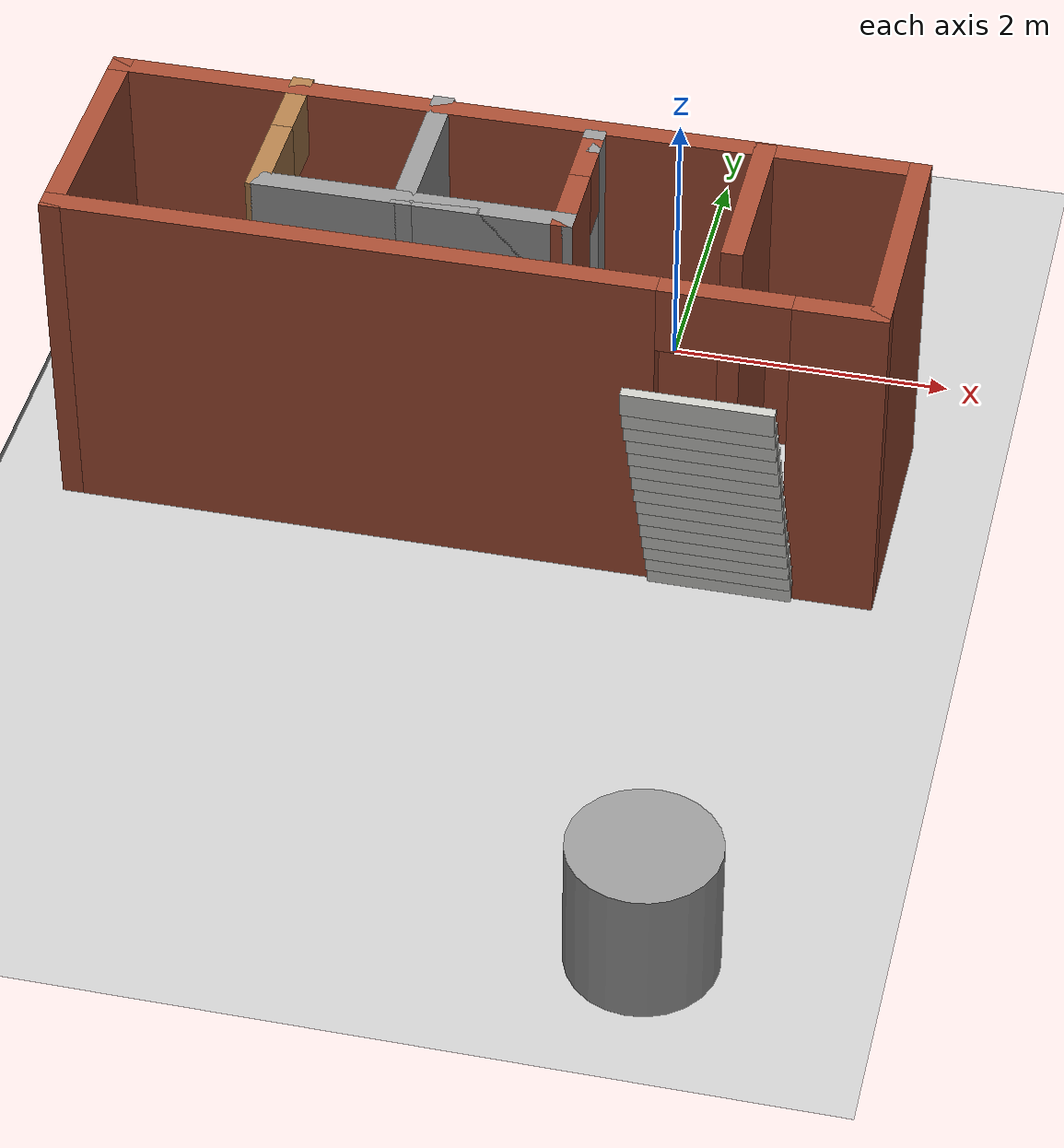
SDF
<sdf version="1.7">
 <world name="default">
  <light name="sun" type="directional">
   <pose>0 0 10 0 -0 0</pose>
   <diffuse>0.8 0.8 0.8 1</diffuse>
   <specular>0.2 0.2 0.2 1</specular>
   <attenuation>
    <range>1000</range>
    <constant>0.9</constant>
    <linear>0.01</linear>
    <quadratic>0.001</quadratic>
   </attenuation>
   <direction>-0.5 0.1 -0.9</direction>
   <spot><inner_angle>0</inner_angle><outer_angle>0</outer_angle><falloff>0</falloff></spot>
  </light>
  <model name="ground_plane">
   <static>1</static>
   <link name="link">
    <collision name="collision">
     <geometry><plane><normal>0 0 1</normal><size>100 100</size></plane></geometry>
     <surface>
      <contact><collide_bitmask>65535</collide_bitmask></contact>
      <friction><ode><mu>100</mu><mu2>50</mu2></ode></friction>
     </surface>
    </collision>
    <visual name="visual">
     <cast_shadows>0</cast_shadows>
     <geometry><plane><normal>0 0 1</normal><size>100 100</size></plane></geometry>
     <material>
      <script><uri>file://media/materials/scripts/gazebo.material</uri><name>Gazebo/Grey</name></script>
     </material>
    </visual>
   </link>
  </model>
  <gravity>0 0 -9.8</gravity>
  <magnetic_field>6e-06 2.3e-05 -4.2e-05</magnetic_field>
  <atmosphere type="adiabatic"/>
  <physics type="ode">
   <max_step_size>0.001</max_step_size>
   <real_time_factor>1</real_time_factor>
   <real_time_update_rate>1000</real_time_update_rate>
  </physics>
  <scene><ambient>0.4 0.4 0.4 1</ambient><background>0.7 0.7 0.7 1</background><shadows>1</shadows></scene>
  <spherical_coordinates>
   <surface_model>EARTH_WGS84</surface_model>
   <latitude_deg>0</latitude_deg>
   <longitude_deg>0</longitude_deg>
   <elevation>0</elevation>
   <heading_deg>0</heading_deg>
  </spherical_coordinates>
  <model name="Untitled">
   <pose>-1.01 -1.78129 0 0 -0 0</pose>
   <link name="Stairs_0">
    <visual name="Stairs_0_Visual_0">
     <pose>1.82 -0.686462 0.083333 0 -0 0</pose>
     <geometry><box><size>1 0.075505 0.166667</size></box></geometry>
     <material>
      <script><uri>file://media/materials/scripts/gazebo.material</uri><name>Gazebo/CeilingTiled</name></script>
      <ambient>1 1 1 1</ambient>
     </material>
     <meta><layer>0</layer></meta>
    </visual>
    <collision name="Stairs_0_Collision_0">
     <geometry><box><size>1 0.075505 0.166667</size></box></geometry>
     <pose>1.82 -0.686462 0.083333 0 -0 0</pose>
    </collision>
    <visual name="Stairs_0_Visual_1">
     <pose>1.82 -0.761967 0.25 0 -0 0</pose>
     <geometry><box><size>1 0.075505 0.166667</size></box></geometry>
     <material>
      <script><uri>file://media/materials/scripts/gazebo.material</uri><name>Gazebo/CeilingTiled</name></script>
      <ambient>1 1 1 1</ambient>
     </material>
     <meta><layer>0</layer></meta>
    </visual>
    <collision name="Stairs_0_Collision_1">
     <geometry><box><size>1 0.075505 0.166667</size></box></geometry>
     <pose>1.82 -0.761967 0.25 0 -0 0</pose>
    </collision>
    <visual name="Stairs_0_Visual_2">
     <pose>1.82 -0.837473 0.416667 0 -0 0</pose>
     <geometry><box><size>1 0.075505 0.166667</size></box></geometry>
     <material>
      <script><uri>file://media/materials/scripts/gazebo.material</uri><name>Gazebo/CeilingTiled</name></script>
      <ambient>1 1 1 1</ambient>
     </material>
     <meta><layer>0</layer></meta>
    </visual>
    <collision name="Stairs_0_Collision_2">
     <geometry><box><size>1 0.075505 0.166667</size></box></geometry>
     <pose>1.82 -0.837473 0.416667 0 -0 0</pose>
    </collision>
    <visual name="Stairs_0_Visual_3">
     <pose>1.82 -0.912978 0.583333 0 -0 0</pose>
     <geometry><box><size>1 0.075505 0.166667</size></box></geometry>
     <material>
      <script><uri>file://media/materials/scripts/gazebo.material</uri><name>Gazebo/CeilingTiled</name></script>
      <ambient>1 1 1 1</ambient>
     </material>
     <meta><layer>0</layer></meta>
    </visual>
    <collision name="Stairs_0_Collision_3">
     <geometry><box><size>1 0.075505 0.166667</size></box></geometry>
     <pose>1.82 -0.912978 0.583333 0 -0 0</pose>
    </collision>
    <visual name="Stairs_0_Visual_4">
     <pose>1.82 -0.988484 0.75 0 -0 0</pose>
     <geometry><box><size>1 0.075505 0.166667</size></box></geometry>
     <material>
      <script><uri>file://media/materials/scripts/gazebo.material</uri><name>Gazebo/CeilingTiled</name></script>
      <ambient>1 1 1 1</ambient>
     </material>
     <meta><layer>0</layer></meta>
    </visual>
    <collision name="Stairs_0_Collision_4">
     <geometry><box><size>1 0.075505 0.166667</size></box></geometry>
     <pose>1.82 -0.988484 0.75 0 -0 0</pose>
    </collision>
    <visual name="Stairs_0_Visual_5">
     <pose>1.82 -1.06399 0.916667 0 -0 0</pose>
     <geometry><box><size>1 0.075505 0.166667</size></box></geometry>
     <material>
      <script><uri>file://media/materials/scripts/gazebo.material</uri><name>Gazebo/CeilingTiled</name></script>
      <ambient>1 1 1 1</ambient>
     </material>
     <meta><layer>0</layer></meta>
    </visual>
    <collision name="Stairs_0_Collision_5">
     <geometry><box><size>1 0.075505 0.166667</size></box></geometry>
     <pose>1.82 -1.06399 0.916667 0 -0 0</pose>
    </collision>
    <visual name="Stairs_0_Visual_6">
     <pose>1.82 -1.13949 1.08333 0 -0 0</pose>
     <geometry><box><size>1 0.075505 0.166667</size></box></geometry>
     <material>
      <script><uri>file://media/materials/scripts/gazebo.material</uri><name>Gazebo/CeilingTiled</name></script>
      <ambient>1 1 1 1</ambient>
     </material>
     <meta><layer>0</layer></meta>
    </visual>
    <collision name="Stairs_0_Collision_6">
     <geometry><box><size>1 0.075505 0.166667</size></box></geometry>
     <pose>1.82 -1.13949 1.08333 0 -0 0</pose>
    </collision>
    <visual name="Stairs_0_Visual_7">
     <pose>1.82 -1.215 1.25 0 -0 0</pose>
     <geometry><box><size>1 0.075505 0.166667</size></box></geometry>
     <material>
      <script><uri>file://media/materials/scripts/gazebo.material</uri><name>Gazebo/CeilingTiled</name></script>
      <ambient>1 1 1 1</ambient>
     </material>
     <meta><layer>0</layer></meta>
    </visual>
    <collision name="Stairs_0_Collision_7">
     <geometry><box><size>1 0.075505 0.166667</size></box></geometry>
     <pose>1.82 -1.215 1.25 0 -0 0</pose>
    </collision>
    <visual name="Stairs_0_Visual_8">
     <pose>1.82 -1.29051 1.41667 0 -0 0</pose>
     <geometry><box><size>1 0.075505 0.166667</size></box></geometry>
     <material>
      <script><uri>file://media/materials/scripts/gazebo.material</uri><name>Gazebo/CeilingTiled</name></script>
      <ambient>1 1 1 1</ambient>
     </material>
     <meta><layer>0</layer></meta>
    </visual>
    <collision name="Stairs_0_Collision_8">
     <geometry><box><size>1 0.075505 0.166667</size></box></geometry>
     <pose>1.82 -1.29051 1.41667 0 -0 0</pose>
    </collision>
    <visual name="Stairs_0_Visual_9">
     <pose>1.82 -1.36601 1.58333 0 -0 0</pose>
     <geometry><box><size>1 0.075505 0.166667</size></box></geometry>
     <material>
      <script><uri>file://media/materials/scripts/gazebo.material</uri><name>Gazebo/CeilingTiled</name></script>
      <ambient>1 1 1 1</ambient>
     </material>
     <meta><layer>0</layer></meta>
    </visual>
    <collision name="Stairs_0_Collision_9">
     <geometry><box><size>1 0.075505 0.166667</size></box></geometry>
     <pose>1.82 -1.36601 1.58333 0 -0 0</pose>
    </collision>
    <visual name="Stairs_0_Visual_10">
     <pose>1.82 -1.44152 1.75 0 -0 0</pose>
     <geometry><box><size>1 0.075505 0.166667</size></box></geometry>
     <material>
      <script><uri>file://media/materials/scripts/gazebo.material</uri><name>Gazebo/CeilingTiled</name></script>
      <ambient>1 1 1 1</ambient>
     </material>
     <meta><layer>0</layer></meta>
    </visual>
    <collision name="Stairs_0_Collision_10">
     <geometry><box><size>1 0.075505 0.166667</size></box></geometry>
     <pose>1.82 -1.44152 1.75 0 -0 0</pose>
    </collision>
    <visual name="Stairs_0_Visual_11">
     <pose>1.82 -1.51702 1.91667 0 -0 0</pose>
     <geometry><box><size>1 0.075505 0.166667</size></box></geometry>
     <material>
      <script><uri>file://media/materials/scripts/gazebo.material</uri><name>Gazebo/CeilingTiled</name></script>
      <ambient>1 1 1 1</ambient>
     </material>
     <meta><layer>0</layer></meta>
    </visual>
    <collision name="Stairs_0_Collision_11">
     <geometry><box><size>1 0.075505 0.166667</size></box></geometry>
     <pose>1.82 -1.51702 1.91667 0 -0 0</pose>
    </collision>
    <visual name="Stairs_0_Visual_12">
     <pose>1.82 -1.59253 2.08333 0 -0 0</pose>
     <geometry><box><size>1 0.075505 0.166667</size></box></geometry>
     <material>
      <script><uri>file://media/materials/scripts/gazebo.material</uri><name>Gazebo/CeilingTiled</name></script>
      <ambient>1 1 1 1</ambient>
     </material>
     <meta><layer>0</layer></meta>
    </visual>
    <collision name="Stairs_0_Collision_12">
     <geometry><box><size>1 0.075505 0.166667</size></box></geometry>
     <pose>1.82 -1.59253 2.08333 0 -0 0</pose>
    </collision>
    <visual name="Stairs_0_Visual_13">
     <pose>1.82 -1.66803 2.25 0 -0 0</pose>
     <geometry><box><size>1 0.075505 0.166667</size></box></geometry>
     <material>
      <script><uri>file://media/materials/scripts/gazebo.material</uri><name>Gazebo/CeilingTiled</name></script>
      <ambient>1 1 1 1</ambient>
     </material>
     <meta><layer>0</layer></meta>
    </visual>
    <collision name="Stairs_0_Collision_13">
     <geometry><box><size>1 0.075505 0.166667</size></box></geometry>
     <pose>1.82 -1.66803 2.25 0 -0 0</pose>
    </collision>
    <visual name="Stairs_0_Visual_14">
     <pose>1.82 -1.74354 2.41667 0 -0 0</pose>
     <geometry><box><size>1 0.075505 0.166667</size></box></geometry>
     <material>
      <script><uri>file://media/materials/scripts/gazebo.material</uri><name>Gazebo/CeilingTiled</name></script>
      <ambient>1 1 1 1</ambient>
     </material>
     <meta><layer>0</layer></meta>
    </visual>
    <collision name="Stairs_0_Collision_14">
     <geometry><box><size>1 0.075505 0.166667</size></box></geometry>
     <pose>1.82 -1.74354 2.41667 0 -0 0</pose>
    </collision>
   </link>
   <link name="Wall_0">
    <collision name="Wall_0_Collision">
     <geometry><box><size>5.75 0.15 2.5</size></box></geometry>
     <pose>0 0 1.25 0 -0 0</pose>
    </collision>
    <visual name="Wall_0_Visual">
     <pose>0 0 1.25 0 -0 0</pose>
     <geometry><box><size>5.75 0.15 2.5</size></box></geometry>
     <material>
      <script><uri>file://media/materials/scripts/gazebo.material</uri><name>Gazebo/Bricks</name></script>
      <ambient>1 1 1 1</ambient>
     </material>
     <meta><layer>0</layer></meta>
    </visual>
    <pose>-0 0.991291 0 0 -0 0</pose>
   </link>
   <link name="Wall_1">
    <collision name="Wall_1_Collision">
     <geometry><box><size>1.75 0.15 2.5</size></box></geometry>
     <pose>0 0 1.25 0 -0 0</pose>
    </collision>
    <visual name="Wall_1_Visual">
     <pose>0 0 1.25 0 -0 0</pose>
     <geometry><box><size>1.75 0.15 2.5</size></box></geometry>
     <material>
      <script><uri>file://media/materials/scripts/gazebo.material</uri><name>Gazebo/Bricks</name></script>
      <ambient>1 1 1 1</ambient>
     </material>
     <meta><layer>0</layer></meta>
    </visual>
    <pose>2.8 0.191291 0 0 -0 -1.5708</pose>
   </link>
   <link name="Wall_11">
    <pose>0.58 0.356291 0 0 -0 1.5708</pose>
    <visual name="Wall_11_Visual_0">
     <pose>-0.2125 0 1.25 0 -0 0</pose>
     <geometry><box><size>0.575 0.15 2.5</size></box></geometry>
     <material>
      <script><uri>file://media/materials/scripts/gazebo.material</uri><name>Gazebo/Bricks</name></script>
      <ambient>1 1 1 1</ambient>
     </material>
     <meta><layer>0</layer></meta>
    </visual>
    <collision name="Wall_11_Collision_0">
     <geometry><box><size>0.575 0.15 2.5</size></box></geometry>
     <pose>-0.2125 0 1.25 0 -0 0</pose>
    </collision>
    <visual name="Wall_11_Visual_1">
     <pose>0.2875 0 2.25 0 -0 0</pose>
     <geometry><box><size>0.425 0.15 0.5</size></box></geometry>
     <material>
      <script><uri>file://media/materials/scripts/gazebo.material</uri><name>Gazebo/Bricks</name></script>
      <ambient>1 1 1 1</ambient>
     </material>
     <meta><layer>0</layer></meta>
    </visual>
    <collision name="Wall_11_Collision_1">
     <geometry><box><size>0.425 0.15 0.5</size></box></geometry>
     <pose>0.2875 0 2.25 0 -0 0</pose>
    </collision>
   </link>
   <link name="Wall_12">
    <collision name="Wall_12_Collision">
     <geometry><box><size>0.25 0.15 2.5</size></box></geometry>
     <pose>0 0 1.25 0 -0 0</pose>
    </collision>
    <visual name="Wall_12_Visual">
     <pose>0 0 1.25 0 -0 0</pose>
     <geometry><box><size>0.25 0.15 2.5</size></box></geometry>
     <material>
      <script><uri>file://media/materials/scripts/gazebo.material</uri><name>Gazebo/Grey</name></script>
      <ambient>1 1 1 1</ambient>
     </material>
     <meta><layer>0</layer></meta>
    </visual>
    <pose>0.58 0.831291 0 0 -0 1.5708</pose>
   </link>
   <link name="Wall_14">
    <collision name="Wall_14_Collision">
     <geometry><box><size>1.25 0.15 2.5</size></box></geometry>
     <pose>0 0 1.25 0 -0 0</pose>
    </collision>
    <visual name="Wall_14_Visual">
     <pose>0 0 1.25 0 -0 0</pose>
     <geometry><box><size>1.25 0.15 2.5</size></box></geometry>
     <material>
      <script><uri>file://media/materials/scripts/gazebo.material</uri><name>Gazebo/Bricks</name></script>
      <ambient>1 1 1 1</ambient>
     </material>
     <meta><layer>0</layer></meta>
    </visual>
    <pose>1.74 0.431291 0 0 -0 -1.5708</pose>
   </link>
   <link name="Wall_2">
    <pose>-0 -0.608709 0 0 -0 3.14159</pose>
    <visual name="Wall_2_Visual_0">
     <pose>-2.5525 0 1.25 0 -0 0</pose>
     <geometry><box><size>0.645 0.15 2.5</size></box></geometry>
     <material>
      <script><uri>file://media/materials/scripts/gazebo.material</uri><name>Gazebo/Bricks</name></script>
      <ambient>1 1 1 1</ambient>
     </material>
     <meta><layer>0</layer></meta>
    </visual>
    <collision name="Wall_2_Collision_0">
     <geometry><box><size>0.645 0.15 2.5</size></box></geometry>
     <pose>-2.5525 0 1.25 0 -0 0</pose>
    </collision>
    <visual name="Wall_2_Visual_1">
     <pose>0.7725 0 1.25 0 -0 0</pose>
     <geometry><box><size>4.205 0.15 2.5</size></box></geometry>
     <material>
      <script><uri>file://media/materials/scripts/gazebo.material</uri><name>Gazebo/Bricks</name></script>
      <ambient>1 1 1 1</ambient>
     </material>
     <meta><layer>0</layer></meta>
    </visual>
    <collision name="Wall_2_Collision_1">
     <geometry><box><size>4.205 0.15 2.5</size></box></geometry>
     <pose>0.7725 0 1.25 0 -0 0</pose>
    </collision>
    <visual name="Wall_2_Visual_2">
     <pose>-1.78 0 2.25 0 -0 0</pose>
     <geometry><box><size>0.9 0.15 0.5</size></box></geometry>
     <material>
      <script><uri>file://media/materials/scripts/gazebo.material</uri><name>Gazebo/Bricks</name></script>
      <ambient>1 1 1 1</ambient>
     </material>
     <meta><layer>0</layer></meta>
    </visual>
    <collision name="Wall_2_Collision_2">
     <geometry><box><size>0.9 0.15 0.5</size></box></geometry>
     <pose>-1.78 0 2.25 0 -0 0</pose>
    </collision>
   </link>
   <link name="Wall_3">
    <collision name="Wall_3_Collision">
     <geometry><box><size>1.75 0.15 2.5</size></box></geometry>
     <pose>0 0 1.25 0 -0 0</pose>
    </collision>
    <visual name="Wall_3_Visual">
     <pose>0 0 1.25 0 -0 0</pose>
     <geometry><box><size>1.75 0.15 2.5</size></box></geometry>
     <material>
      <script><uri>file://media/materials/scripts/gazebo.material</uri><name>Gazebo/Bricks</name></script>
      <ambient>1 1 1 1</ambient>
     </material>
     <meta><layer>0</layer></meta>
    </visual>
    <pose>-2.8 0.191291 0 0 -0 1.5708</pose>
   </link>
   <link name="Wall_5">
    <pose>-1.52 0.481291 0 0 -0 -1.5708</pose>
    <visual name="Wall_5_Visual_0">
     <pose>-0.555 0 1.25 0 -0 0</pose>
     <geometry><box><size>0.14 0.15 2.5</size></box></geometry>
     <material>
      <script><uri>file://media/materials/scripts/gazebo.material</uri><name>Gazebo/Wood</name></script>
      <ambient>1 1 1 1</ambient>
     </material>
     <meta><layer>0</layer></meta>
    </visual>
    <collision name="Wall_5_Collision_0">
     <geometry><box><size>0.14 0.15 2.5</size></box></geometry>
     <pose>-0.555 0 1.25 0 -0 0</pose>
    </collision>
    <visual name="Wall_5_Visual_1">
     <pose>0.285 0 1.25 0 -0 0</pose>
     <geometry><box><size>0.68 0.15 2.5</size></box></geometry>
     <material>
      <script><uri>file://media/materials/scripts/gazebo.material</uri><name>Gazebo/Wood</name></script>
      <ambient>1 1 1 1</ambient>
     </material>
     <meta><layer>0</layer></meta>
    </visual>
    <collision name="Wall_5_Collision_1">
     <geometry><box><size>0.68 0.15 2.5</size></box></geometry>
     <pose>0.285 0 1.25 0 -0 0</pose>
    </collision>
    <visual name="Wall_5_Visual_2">
     <pose>-0.27 0 2.25 0 -0 0</pose>
     <geometry><box><size>0.43 0.15 0.5</size></box></geometry>
     <material>
      <script><uri>file://media/materials/scripts/gazebo.material</uri><name>Gazebo/Wood</name></script>
      <ambient>1 1 1 1</ambient>
     </material>
     <meta><layer>0</layer></meta>
    </visual>
    <collision name="Wall_5_Collision_2">
     <geometry><box><size>0.43 0.15 0.5</size></box></geometry>
     <pose>-0.27 0 2.25 0 -0 0</pose>
    </collision>
   </link>
   <link name="Wall_7">
    <collision name="Wall_7_Collision">
     <geometry><box><size>2.25 0.15 2.5</size></box></geometry>
     <pose>0 0 1.25 0 -0 0</pose>
    </collision>
    <visual name="Wall_7_Visual">
     <pose>0 0 1.25 0 -0 0</pose>
     <geometry><box><size>2.25 0.15 2.5</size></box></geometry>
     <material>
      <script><uri>file://media/materials/scripts/gazebo.material</uri><name>Gazebo/Grey</name></script>
      <ambient>1 1 1 1</ambient>
     </material>
     <meta><layer>0</layer></meta>
    </visual>
    <pose>-0.47 -0.068709 0 0 -0 0</pose>
   </link>
   <link name="Wall_8">
    <collision name="Wall_8_Collision">
     <geometry><box><size>1.25 0.15 2.5</size></box></geometry>
     <pose>0 0 1.25 0 -0 0</pose>
    </collision>
    <visual name="Wall_8_Visual">
     <pose>0 0 1.25 0 -0 0</pose>
     <geometry><box><size>1.25 0.15 2.5</size></box></geometry>
     <material>
      <script><uri>file://media/materials/scripts/gazebo.material</uri><name>Gazebo/Grey</name></script>
      <ambient>1 1 1 1</ambient>
     </material>
     <meta><layer>0</layer></meta>
    </visual>
    <pose>0.03 -0.068709 0 0 -0 3.14159</pose>
   </link>
   <link name="Wall_9">
    <collision name="Wall_9_Collision">
     <geometry><box><size>1.25 0.15 2.5</size></box></geometry>
     <pose>0 0 1.25 0 -0 0</pose>
    </collision>
    <visual name="Wall_9_Visual">
     <pose>0 0 1.25 0 -0 0</pose>
     <geometry><box><size>1.25 0.15 2.5</size></box></geometry>
     <material>
      <script><uri>file://media/materials/scripts/gazebo.material</uri><name>Gazebo/Grey</name></script>
      <ambient>1 1 1 1</ambient>
     </material>
     <meta><layer>0</layer></meta>
    </visual>
    <pose>-0.52 0.481291 0 0 -0 1.5708</pose>
   </link>
   <static>1</static>
  </model>
  <light name="sun" type="directional">
   <pose>-110 64 10 0 -0 0</pose>
   <diffuse>0.8 0.8 0.8 1</diffuse>
   <specular>0.2 0.2 0.2 1</specular>
   <attenuation>
    <range>1000</range>
    <constant>0.9</constant>
    <linear>0.01</linear>
    <quadratic>0.001</quadratic>
   </attenuation>
   <direction>-0.5 0.1 -0.9</direction>
  </light>
  <model name="ground_plane_0">
   <static>1</static>
   <link name="link">
    <collision name="collision">
     <geometry><plane><normal>0 0 1</normal><size>100 100</size></plane></geometry>
     <surface>
      <contact><collide_bitmask>65535</collide_bitmask></contact>
      <friction><ode><mu>100</mu><mu2>50</mu2></ode></friction>
     </surface>
    </collision>
    <visual name="visual">
     <cast_shadows>0</cast_shadows>
     <geometry><plane><normal>0 0 1</normal><size>100 100</size></plane></geometry>
     <material>
      <script><uri>file://media/materials/scripts/gazebo.material</uri><name>Gazebo/Grey</name></script>
     </material>
    </visual>
   </link>
   <pose>-61.4854 32 0 0 -0 0</pose>
  </model>
  <model name="unit_cylinder">
   <pose>0.999998 -6 0.499997 -4e-06 -4e-06 -0</pose>
   <link name="link">
    <inertial>
     <mass>1</mass>
     <inertia><ixx>0.145833</ixx><ixy>0</ixy><ixz>0</ixz><iyy>0.145833</iyy><iyz>0</iyz><izz>0.125</izz></inertia>
    </inertial>
    <collision name="collision">
     <geometry><cylinder><radius>0.5</radius><length>1</length></cylinder></geometry>
    </collision>
    <visual name="visual">
     <geometry><cylinder><radius>0.5</radius><length>1</length></cylinder></geometry>
     <material>
      <script><name>Gazebo/Grey</name><uri>file://media/materials/scripts/gazebo.material</uri></script>
     </material>
    </visual>
   </link>
  </model>
 </world>
</sdf>
